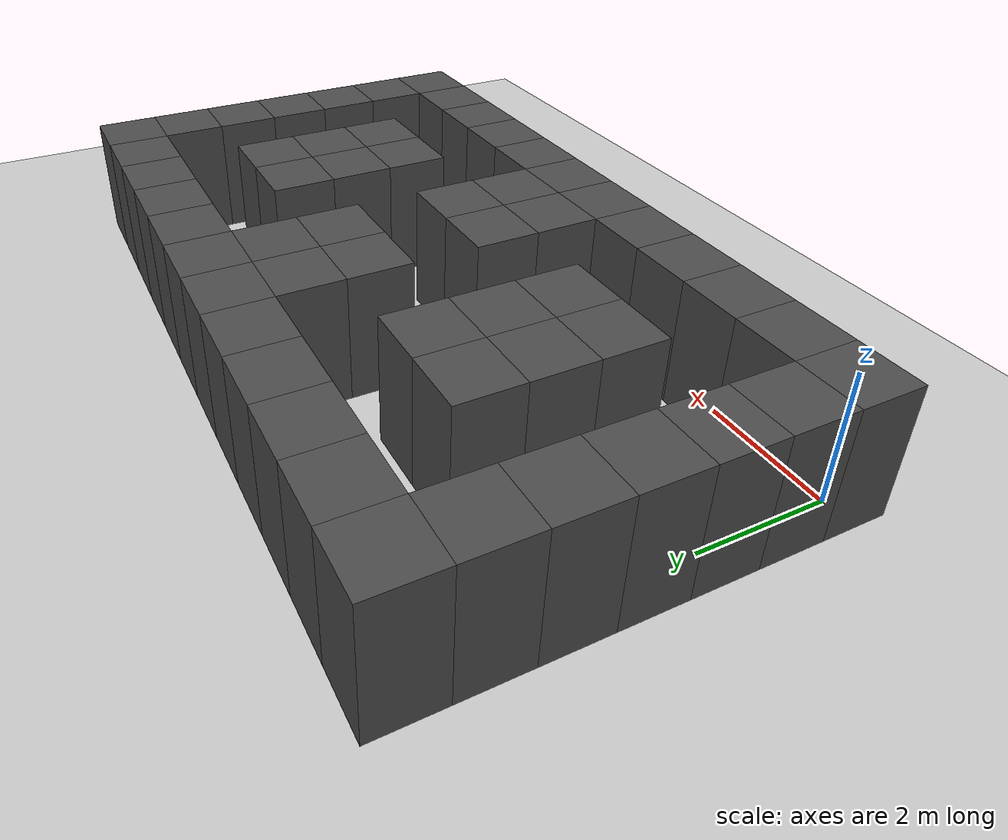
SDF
<?xml version="1.0" ?>
<sdf version="1.9">
  <world name="sih_warehouse_world">
    <plugin filename="gz-sim-physics-system" name="gz::sim::systems::Physics"/>
    <plugin filename="gz-sim-user-commands-system" name="gz::sim::systems::UserCommands"/>
    <plugin filename="gz-sim-scene-broadcaster-system" name="gz::sim::systems::SceneBroadcaster"/>
    <plugin filename="gz-sim-sensors-system" name="gz::sim::systems::Sensors">
      <render_engine>ogre2</render_engine>
    </plugin>
    <plugin filename="gz-sim-imu-system" name="gz::sim::systems::Imu"/>

    <light type="directional" name="sun">
      <cast_shadows>true</cast_shadows>
      <pose>0 0 10 0 0 0</pose>
      <diffuse>0.8 0.8 0.8 1</diffuse>
      <specular>0.2 0.2 0.2 1</specular>
      <attenuation>
        <range>1000</range>
        <constant>0.9</constant>
        <linear>0.01</linear>
        <quadratic>0.001</quadratic>
      </attenuation>
      <direction>-0.5 0.1 -0.9</direction>
    </light>

    <model name="ground_plane">
      <static>true</static>
      <link name="link">
        <collision name="collision">
          <geometry><plane><normal>0 0 1</normal><size>100 100</size></plane></geometry>
        </collision>
        <visual name="visual">
          <geometry><plane><normal>0 0 1</normal><size>100 100</size></plane></geometry>
          <material>
            <ambient>0.8 0.8 0.8 1</ambient>
            <diffuse>0.8 0.8 0.8 1</diffuse>
          </material>
        </visual>
      </link>
    </model>

    <model name='rack_0'>
      <pose>0.0 0.0 1.0 0 0 0</pose>
      <static>true</static>
      <link name='link'>
        <collision name='collision'>
          <geometry><box><size>1.0 1.0 2.0</size></box></geometry>
        </collision>
        <visual name='visual'>
          <geometry><box><size>1.0 1.0 2.0</size></box></geometry>
          <material><ambient>0.3 0.3 0.3 1</ambient></material>
        </visual>
      </link>
    </model>
    <model name='rack_1'>
      <pose>1.0 0.0 1.0 0 0 0</pose>
      <static>true</static>
      <link name='link'>
        <collision name='collision'>
          <geometry><box><size>1.0 1.0 2.0</size></box></geometry>
        </collision>
        <visual name='visual'>
          <geometry><box><size>1.0 1.0 2.0</size></box></geometry>
          <material><ambient>0.3 0.3 0.3 1</ambient></material>
        </visual>
      </link>
    </model>
    <model name='rack_2'>
      <pose>2.0 0.0 1.0 0 0 0</pose>
      <static>true</static>
      <link name='link'>
        <collision name='collision'>
          <geometry><box><size>1.0 1.0 2.0</size></box></geometry>
        </collision>
        <visual name='visual'>
          <geometry><box><size>1.0 1.0 2.0</size></box></geometry>
          <material><ambient>0.3 0.3 0.3 1</ambient></material>
        </visual>
      </link>
    </model>
    <model name='rack_3'>
      <pose>3.0 0.0 1.0 0 0 0</pose>
      <static>true</static>
      <link name='link'>
        <collision name='collision'>
          <geometry><box><size>1.0 1.0 2.0</size></box></geometry>
        </collision>
        <visual name='visual'>
          <geometry><box><size>1.0 1.0 2.0</size></box></geometry>
          <material><ambient>0.3 0.3 0.3 1</ambient></material>
        </visual>
      </link>
    </model>
    <model name='rack_4'>
      <pose>4.0 0.0 1.0 0 0 0</pose>
      <static>true</static>
      <link name='link'>
        <collision name='collision'>
          <geometry><box><size>1.0 1.0 2.0</size></box></geometry>
        </collision>
        <visual name='visual'>
          <geometry><box><size>1.0 1.0 2.0</size></box></geometry>
          <material><ambient>0.3 0.3 0.3 1</ambient></material>
        </visual>
      </link>
    </model>
    <model name='rack_5'>
      <pose>5.0 0.0 1.0 0 0 0</pose>
      <static>true</static>
      <link name='link'>
        <collision name='collision'>
          <geometry><box><size>1.0 1.0 2.0</size></box></geometry>
        </collision>
        <visual name='visual'>
          <geometry><box><size>1.0 1.0 2.0</size></box></geometry>
          <material><ambient>0.3 0.3 0.3 1</ambient></material>
        </visual>
      </link>
    </model>
    <model name='rack_6'>
      <pose>6.0 0.0 1.0 0 0 0</pose>
      <static>true</static>
      <link name='link'>
        <collision name='collision'>
          <geometry><box><size>1.0 1.0 2.0</size></box></geometry>
        </collision>
        <visual name='visual'>
          <geometry><box><size>1.0 1.0 2.0</size></box></geometry>
          <material><ambient>0.3 0.3 0.3 1</ambient></material>
        </visual>
      </link>
    </model>
    <model name='rack_7'>
      <pose>7.0 0.0 1.0 0 0 0</pose>
      <static>true</static>
      <link name='link'>
        <collision name='collision'>
          <geometry><box><size>1.0 1.0 2.0</size></box></geometry>
        </collision>
        <visual name='visual'>
          <geometry><box><size>1.0 1.0 2.0</size></box></geometry>
          <material><ambient>0.3 0.3 0.3 1</ambient></material>
        </visual>
      </link>
    </model>
    <model name='rack_8'>
      <pose>8.0 0.0 1.0 0 0 0</pose>
      <static>true</static>
      <link name='link'>
        <collision name='collision'>
          <geometry><box><size>1.0 1.0 2.0</size></box></geometry>
        </collision>
        <visual name='visual'>
          <geometry><box><size>1.0 1.0 2.0</size></box></geometry>
          <material><ambient>0.3 0.3 0.3 1</ambient></material>
        </visual>
      </link>
    </model>
    <model name='rack_9'>
      <pose>9.0 0.0 1.0 0 0 0</pose>
      <static>true</static>
      <link name='link'>
        <collision name='collision'>
          <geometry><box><size>1.0 1.0 2.0</size></box></geometry>
        </collision>
        <visual name='visual'>
          <geometry><box><size>1.0 1.0 2.0</size></box></geometry>
          <material><ambient>0.3 0.3 0.3 1</ambient></material>
        </visual>
      </link>
    </model>
    <model name='rack_10'>
      <pose>10.0 0.0 1.0 0 0 0</pose>
      <static>true</static>
      <link name='link'>
        <collision name='collision'>
          <geometry><box><size>1.0 1.0 2.0</size></box></geometry>
        </collision>
        <visual name='visual'>
          <geometry><box><size>1.0 1.0 2.0</size></box></geometry>
          <material><ambient>0.3 0.3 0.3 1</ambient></material>
        </visual>
      </link>
    </model>
    <model name='rack_11'>
      <pose>11.0 0.0 1.0 0 0 0</pose>
      <static>true</static>
      <link name='link'>
        <collision name='collision'>
          <geometry><box><size>1.0 1.0 2.0</size></box></geometry>
        </collision>
        <visual name='visual'>
          <geometry><box><size>1.0 1.0 2.0</size></box></geometry>
          <material><ambient>0.3 0.3 0.3 1</ambient></material>
        </visual>
      </link>
    </model>
    <model name='rack_12'>
      <pose>0.0 1.0 1.0 0 0 0</pose>
      <static>true</static>
      <link name='link'>
        <collision name='collision'>
          <geometry><box><size>1.0 1.0 2.0</size></box></geometry>
        </collision>
        <visual name='visual'>
          <geometry><box><size>1.0 1.0 2.0</size></box></geometry>
          <material><ambient>0.3 0.3 0.3 1</ambient></material>
        </visual>
      </link>
    </model>
    <model name='rack_13'>
      <pose>5.0 1.0 1.0 0 0 0</pose>
      <static>true</static>
      <link name='link'>
        <collision name='collision'>
          <geometry><box><size>1.0 1.0 2.0</size></box></geometry>
        </collision>
        <visual name='visual'>
          <geometry><box><size>1.0 1.0 2.0</size></box></geometry>
          <material><ambient>0.3 0.3 0.3 1</ambient></material>
        </visual>
      </link>
    </model>
    <model name='rack_14'>
      <pose>6.0 1.0 1.0 0 0 0</pose>
      <static>true</static>
      <link name='link'>
        <collision name='collision'>
          <geometry><box><size>1.0 1.0 2.0</size></box></geometry>
        </collision>
        <visual name='visual'>
          <geometry><box><size>1.0 1.0 2.0</size></box></geometry>
          <material><ambient>0.3 0.3 0.3 1</ambient></material>
        </visual>
      </link>
    </model>
    <model name='rack_15'>
      <pose>11.0 1.0 1.0 0 0 0</pose>
      <static>true</static>
      <link name='link'>
        <collision name='collision'>
          <geometry><box><size>1.0 1.0 2.0</size></box></geometry>
        </collision>
        <visual name='visual'>
          <geometry><box><size>1.0 1.0 2.0</size></box></geometry>
          <material><ambient>0.3 0.3 0.3 1</ambient></material>
        </visual>
      </link>
    </model>
    <model name='rack_16'>
      <pose>0.0 2.0 1.0 0 0 0</pose>
      <static>true</static>
      <link name='link'>
        <collision name='collision'>
          <geometry><box><size>1.0 1.0 2.0</size></box></geometry>
        </collision>
        <visual name='visual'>
          <geometry><box><size>1.0 1.0 2.0</size></box></geometry>
          <material><ambient>0.3 0.3 0.3 1</ambient></material>
        </visual>
      </link>
    </model>
    <model name='rack_17'>
      <pose>2.0 2.0 1.0 0 0 0</pose>
      <static>true</static>
      <link name='link'>
        <collision name='collision'>
          <geometry><box><size>1.0 1.0 2.0</size></box></geometry>
        </collision>
        <visual name='visual'>
          <geometry><box><size>1.0 1.0 2.0</size></box></geometry>
          <material><ambient>0.3 0.3 0.3 1</ambient></material>
        </visual>
      </link>
    </model>
    <model name='rack_18'>
      <pose>3.0 2.0 1.0 0 0 0</pose>
      <static>true</static>
      <link name='link'>
        <collision name='collision'>
          <geometry><box><size>1.0 1.0 2.0</size></box></geometry>
        </collision>
        <visual name='visual'>
          <geometry><box><size>1.0 1.0 2.0</size></box></geometry>
          <material><ambient>0.3 0.3 0.3 1</ambient></material>
        </visual>
      </link>
    </model>
    <model name='rack_19'>
      <pose>5.0 2.0 1.0 0 0 0</pose>
      <static>true</static>
      <link name='link'>
        <collision name='collision'>
          <geometry><box><size>1.0 1.0 2.0</size></box></geometry>
        </collision>
        <visual name='visual'>
          <geometry><box><size>1.0 1.0 2.0</size></box></geometry>
          <material><ambient>0.3 0.3 0.3 1</ambient></material>
        </visual>
      </link>
    </model>
    <model name='rack_20'>
      <pose>6.0 2.0 1.0 0 0 0</pose>
      <static>true</static>
      <link name='link'>
        <collision name='collision'>
          <geometry><box><size>1.0 1.0 2.0</size></box></geometry>
        </collision>
        <visual name='visual'>
          <geometry><box><size>1.0 1.0 2.0</size></box></geometry>
          <material><ambient>0.3 0.3 0.3 1</ambient></material>
        </visual>
      </link>
    </model>
    <model name='rack_21'>
      <pose>8.0 2.0 1.0 0 0 0</pose>
      <static>true</static>
      <link name='link'>
        <collision name='collision'>
          <geometry><box><size>1.0 1.0 2.0</size></box></geometry>
        </collision>
        <visual name='visual'>
          <geometry><box><size>1.0 1.0 2.0</size></box></geometry>
          <material><ambient>0.3 0.3 0.3 1</ambient></material>
        </visual>
      </link>
    </model>
    <model name='rack_22'>
      <pose>9.0 2.0 1.0 0 0 0</pose>
      <static>true</static>
      <link name='link'>
        <collision name='collision'>
          <geometry><box><size>1.0 1.0 2.0</size></box></geometry>
        </collision>
        <visual name='visual'>
          <geometry><box><size>1.0 1.0 2.0</size></box></geometry>
          <material><ambient>0.3 0.3 0.3 1</ambient></material>
        </visual>
      </link>
    </model>
    <model name='rack_23'>
      <pose>11.0 2.0 1.0 0 0 0</pose>
      <static>true</static>
      <link name='link'>
        <collision name='collision'>
          <geometry><box><size>1.0 1.0 2.0</size></box></geometry>
        </collision>
        <visual name='visual'>
          <geometry><box><size>1.0 1.0 2.0</size></box></geometry>
          <material><ambient>0.3 0.3 0.3 1</ambient></material>
        </visual>
      </link>
    </model>
    <model name='rack_24'>
      <pose>0.0 3.0 1.0 0 0 0</pose>
      <static>true</static>
      <link name='link'>
        <collision name='collision'>
          <geometry><box><size>1.0 1.0 2.0</size></box></geometry>
        </collision>
        <visual name='visual'>
          <geometry><box><size>1.0 1.0 2.0</size></box></geometry>
          <material><ambient>0.3 0.3 0.3 1</ambient></material>
        </visual>
      </link>
    </model>
    <model name='rack_25'>
      <pose>2.0 3.0 1.0 0 0 0</pose>
      <static>true</static>
      <link name='link'>
        <collision name='collision'>
          <geometry><box><size>1.0 1.0 2.0</size></box></geometry>
        </collision>
        <visual name='visual'>
          <geometry><box><size>1.0 1.0 2.0</size></box></geometry>
          <material><ambient>0.3 0.3 0.3 1</ambient></material>
        </visual>
      </link>
    </model>
    <model name='rack_26'>
      <pose>3.0 3.0 1.0 0 0 0</pose>
      <static>true</static>
      <link name='link'>
        <collision name='collision'>
          <geometry><box><size>1.0 1.0 2.0</size></box></geometry>
        </collision>
        <visual name='visual'>
          <geometry><box><size>1.0 1.0 2.0</size></box></geometry>
          <material><ambient>0.3 0.3 0.3 1</ambient></material>
        </visual>
      </link>
    </model>
    <model name='rack_27'>
      <pose>8.0 3.0 1.0 0 0 0</pose>
      <static>true</static>
      <link name='link'>
        <collision name='collision'>
          <geometry><box><size>1.0 1.0 2.0</size></box></geometry>
        </collision>
        <visual name='visual'>
          <geometry><box><size>1.0 1.0 2.0</size></box></geometry>
          <material><ambient>0.3 0.3 0.3 1</ambient></material>
        </visual>
      </link>
    </model>
    <model name='rack_28'>
      <pose>9.0 3.0 1.0 0 0 0</pose>
      <static>true</static>
      <link name='link'>
        <collision name='collision'>
          <geometry><box><size>1.0 1.0 2.0</size></box></geometry>
        </collision>
        <visual name='visual'>
          <geometry><box><size>1.0 1.0 2.0</size></box></geometry>
          <material><ambient>0.3 0.3 0.3 1</ambient></material>
        </visual>
      </link>
    </model>
    <model name='rack_29'>
      <pose>11.0 3.0 1.0 0 0 0</pose>
      <static>true</static>
      <link name='link'>
        <collision name='collision'>
          <geometry><box><size>1.0 1.0 2.0</size></box></geometry>
        </collision>
        <visual name='visual'>
          <geometry><box><size>1.0 1.0 2.0</size></box></geometry>
          <material><ambient>0.3 0.3 0.3 1</ambient></material>
        </visual>
      </link>
    </model>
    <model name='rack_30'>
      <pose>0.0 4.0 1.0 0 0 0</pose>
      <static>true</static>
      <link name='link'>
        <collision name='collision'>
          <geometry><box><size>1.0 1.0 2.0</size></box></geometry>
        </collision>
        <visual name='visual'>
          <geometry><box><size>1.0 1.0 2.0</size></box></geometry>
          <material><ambient>0.3 0.3 0.3 1</ambient></material>
        </visual>
      </link>
    </model>
    <model name='rack_31'>
      <pose>2.0 4.0 1.0 0 0 0</pose>
      <static>true</static>
      <link name='link'>
        <collision name='collision'>
          <geometry><box><size>1.0 1.0 2.0</size></box></geometry>
        </collision>
        <visual name='visual'>
          <geometry><box><size>1.0 1.0 2.0</size></box></geometry>
          <material><ambient>0.3 0.3 0.3 1</ambient></material>
        </visual>
      </link>
    </model>
    <model name='rack_32'>
      <pose>3.0 4.0 1.0 0 0 0</pose>
      <static>true</static>
      <link name='link'>
        <collision name='collision'>
          <geometry><box><size>1.0 1.0 2.0</size></box></geometry>
        </collision>
        <visual name='visual'>
          <geometry><box><size>1.0 1.0 2.0</size></box></geometry>
          <material><ambient>0.3 0.3 0.3 1</ambient></material>
        </visual>
      </link>
    </model>
    <model name='rack_33'>
      <pose>5.0 4.0 1.0 0 0 0</pose>
      <static>true</static>
      <link name='link'>
        <collision name='collision'>
          <geometry><box><size>1.0 1.0 2.0</size></box></geometry>
        </collision>
        <visual name='visual'>
          <geometry><box><size>1.0 1.0 2.0</size></box></geometry>
          <material><ambient>0.3 0.3 0.3 1</ambient></material>
        </visual>
      </link>
    </model>
    <model name='rack_34'>
      <pose>6.0 4.0 1.0 0 0 0</pose>
      <static>true</static>
      <link name='link'>
        <collision name='collision'>
          <geometry><box><size>1.0 1.0 2.0</size></box></geometry>
        </collision>
        <visual name='visual'>
          <geometry><box><size>1.0 1.0 2.0</size></box></geometry>
          <material><ambient>0.3 0.3 0.3 1</ambient></material>
        </visual>
      </link>
    </model>
    <model name='rack_35'>
      <pose>8.0 4.0 1.0 0 0 0</pose>
      <static>true</static>
      <link name='link'>
        <collision name='collision'>
          <geometry><box><size>1.0 1.0 2.0</size></box></geometry>
        </collision>
        <visual name='visual'>
          <geometry><box><size>1.0 1.0 2.0</size></box></geometry>
          <material><ambient>0.3 0.3 0.3 1</ambient></material>
        </visual>
      </link>
    </model>
    <model name='rack_36'>
      <pose>9.0 4.0 1.0 0 0 0</pose>
      <static>true</static>
      <link name='link'>
        <collision name='collision'>
          <geometry><box><size>1.0 1.0 2.0</size></box></geometry>
        </collision>
        <visual name='visual'>
          <geometry><box><size>1.0 1.0 2.0</size></box></geometry>
          <material><ambient>0.3 0.3 0.3 1</ambient></material>
        </visual>
      </link>
    </model>
    <model name='rack_37'>
      <pose>11.0 4.0 1.0 0 0 0</pose>
      <static>true</static>
      <link name='link'>
        <collision name='collision'>
          <geometry><box><size>1.0 1.0 2.0</size></box></geometry>
        </collision>
        <visual name='visual'>
          <geometry><box><size>1.0 1.0 2.0</size></box></geometry>
          <material><ambient>0.3 0.3 0.3 1</ambient></material>
        </visual>
      </link>
    </model>
    <model name='rack_38'>
      <pose>0.0 5.0 1.0 0 0 0</pose>
      <static>true</static>
      <link name='link'>
        <collision name='collision'>
          <geometry><box><size>1.0 1.0 2.0</size></box></geometry>
        </collision>
        <visual name='visual'>
          <geometry><box><size>1.0 1.0 2.0</size></box></geometry>
          <material><ambient>0.3 0.3 0.3 1</ambient></material>
        </visual>
      </link>
    </model>
    <model name='rack_39'>
      <pose>5.0 5.0 1.0 0 0 0</pose>
      <static>true</static>
      <link name='link'>
        <collision name='collision'>
          <geometry><box><size>1.0 1.0 2.0</size></box></geometry>
        </collision>
        <visual name='visual'>
          <geometry><box><size>1.0 1.0 2.0</size></box></geometry>
          <material><ambient>0.3 0.3 0.3 1</ambient></material>
        </visual>
      </link>
    </model>
    <model name='rack_40'>
      <pose>6.0 5.0 1.0 0 0 0</pose>
      <static>true</static>
      <link name='link'>
        <collision name='collision'>
          <geometry><box><size>1.0 1.0 2.0</size></box></geometry>
        </collision>
        <visual name='visual'>
          <geometry><box><size>1.0 1.0 2.0</size></box></geometry>
          <material><ambient>0.3 0.3 0.3 1</ambient></material>
        </visual>
      </link>
    </model>
    <model name='rack_41'>
      <pose>11.0 5.0 1.0 0 0 0</pose>
      <static>true</static>
      <link name='link'>
        <collision name='collision'>
          <geometry><box><size>1.0 1.0 2.0</size></box></geometry>
        </collision>
        <visual name='visual'>
          <geometry><box><size>1.0 1.0 2.0</size></box></geometry>
          <material><ambient>0.3 0.3 0.3 1</ambient></material>
        </visual>
      </link>
    </model>
    <model name='rack_42'>
      <pose>0.0 6.0 1.0 0 0 0</pose>
      <static>true</static>
      <link name='link'>
        <collision name='collision'>
          <geometry><box><size>1.0 1.0 2.0</size></box></geometry>
        </collision>
        <visual name='visual'>
          <geometry><box><size>1.0 1.0 2.0</size></box></geometry>
          <material><ambient>0.3 0.3 0.3 1</ambient></material>
        </visual>
      </link>
    </model>
    <model name='rack_43'>
      <pose>1.0 6.0 1.0 0 0 0</pose>
      <static>true</static>
      <link name='link'>
        <collision name='collision'>
          <geometry><box><size>1.0 1.0 2.0</size></box></geometry>
        </collision>
        <visual name='visual'>
          <geometry><box><size>1.0 1.0 2.0</size></box></geometry>
          <material><ambient>0.3 0.3 0.3 1</ambient></material>
        </visual>
      </link>
    </model>
    <model name='rack_44'>
      <pose>2.0 6.0 1.0 0 0 0</pose>
      <static>true</static>
      <link name='link'>
        <collision name='collision'>
          <geometry><box><size>1.0 1.0 2.0</size></box></geometry>
        </collision>
        <visual name='visual'>
          <geometry><box><size>1.0 1.0 2.0</size></box></geometry>
          <material><ambient>0.3 0.3 0.3 1</ambient></material>
        </visual>
      </link>
    </model>
    <model name='rack_45'>
      <pose>3.0 6.0 1.0 0 0 0</pose>
      <static>true</static>
      <link name='link'>
        <collision name='collision'>
          <geometry><box><size>1.0 1.0 2.0</size></box></geometry>
        </collision>
        <visual name='visual'>
          <geometry><box><size>1.0 1.0 2.0</size></box></geometry>
          <material><ambient>0.3 0.3 0.3 1</ambient></material>
        </visual>
      </link>
    </model>
    <model name='rack_46'>
      <pose>4.0 6.0 1.0 0 0 0</pose>
      <static>true</static>
      <link name='link'>
        <collision name='collision'>
          <geometry><box><size>1.0 1.0 2.0</size></box></geometry>
        </collision>
        <visual name='visual'>
          <geometry><box><size>1.0 1.0 2.0</size></box></geometry>
          <material><ambient>0.3 0.3 0.3 1</ambient></material>
        </visual>
      </link>
    </model>
    <model name='rack_47'>
      <pose>5.0 6.0 1.0 0 0 0</pose>
      <static>true</static>
      <link name='link'>
        <collision name='collision'>
          <geometry><box><size>1.0 1.0 2.0</size></box></geometry>
        </collision>
        <visual name='visual'>
          <geometry><box><size>1.0 1.0 2.0</size></box></geometry>
          <material><ambient>0.3 0.3 0.3 1</ambient></material>
        </visual>
      </link>
    </model>
    <model name='rack_48'>
      <pose>6.0 6.0 1.0 0 0 0</pose>
      <static>true</static>
      <link name='link'>
        <collision name='collision'>
          <geometry><box><size>1.0 1.0 2.0</size></box></geometry>
        </collision>
        <visual name='visual'>
          <geometry><box><size>1.0 1.0 2.0</size></box></geometry>
          <material><ambient>0.3 0.3 0.3 1</ambient></material>
        </visual>
      </link>
    </model>
    <model name='rack_49'>
      <pose>7.0 6.0 1.0 0 0 0</pose>
      <static>true</static>
      <link name='link'>
        <collision name='collision'>
          <geometry><box><size>1.0 1.0 2.0</size></box></geometry>
        </collision>
        <visual name='visual'>
          <geometry><box><size>1.0 1.0 2.0</size></box></geometry>
          <material><ambient>0.3 0.3 0.3 1</ambient></material>
        </visual>
      </link>
    </model>
    <model name='rack_50'>
      <pose>8.0 6.0 1.0 0 0 0</pose>
      <static>true</static>
      <link name='link'>
        <collision name='collision'>
          <geometry><box><size>1.0 1.0 2.0</size></box></geometry>
        </collision>
        <visual name='visual'>
          <geometry><box><size>1.0 1.0 2.0</size></box></geometry>
          <material><ambient>0.3 0.3 0.3 1</ambient></material>
        </visual>
      </link>
    </model>
    <model name='rack_51'>
      <pose>9.0 6.0 1.0 0 0 0</pose>
      <static>true</static>
      <link name='link'>
        <collision name='collision'>
          <geometry><box><size>1.0 1.0 2.0</size></box></geometry>
        </collision>
        <visual name='visual'>
          <geometry><box><size>1.0 1.0 2.0</size></box></geometry>
          <material><ambient>0.3 0.3 0.3 1</ambient></material>
        </visual>
      </link>
    </model>
    <model name='rack_52'>
      <pose>10.0 6.0 1.0 0 0 0</pose>
      <static>true</static>
      <link name='link'>
        <collision name='collision'>
          <geometry><box><size>1.0 1.0 2.0</size></box></geometry>
        </collision>
        <visual name='visual'>
          <geometry><box><size>1.0 1.0 2.0</size></box></geometry>
          <material><ambient>0.3 0.3 0.3 1</ambient></material>
        </visual>
      </link>
    </model>
    <model name='rack_53'>
      <pose>11.0 6.0 1.0 0 0 0</pose>
      <static>true</static>
      <link name='link'>
        <collision name='collision'>
          <geometry><box><size>1.0 1.0 2.0</size></box></geometry>
        </collision>
        <visual name='visual'>
          <geometry><box><size>1.0 1.0 2.0</size></box></geometry>
          <material><ambient>0.3 0.3 0.3 1</ambient></material>
        </visual>
      </link>
    </model>  </world>
</sdf>
